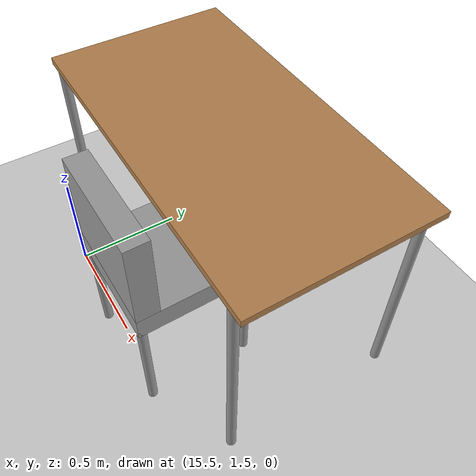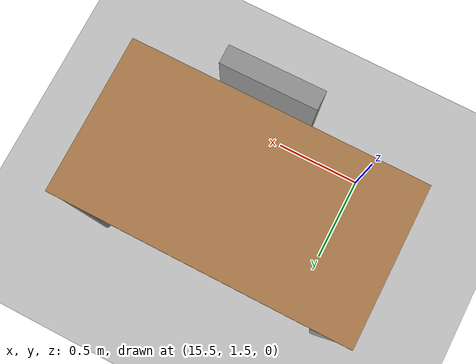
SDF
<sdf version="1.6">
 <world name="default">
  <model name="ground_plane">
   <static>1</static>
   <link name="link">
    <collision name="collision">
     <geometry><plane><normal>0 0 1</normal><size>100 100</size></plane></geometry>
     <surface>
      <contact><collide_bitmask>65535</collide_bitmask></contact>
      <friction><ode><mu>100</mu><mu2>50</mu2></ode></friction>
     </surface>
    </collision>
    <visual name="visual">
     <cast_shadows>0</cast_shadows>
     <geometry><plane><normal>0 0 1</normal><size>100 100</size></plane></geometry>
     <material>
      <script><uri>file://media/materials/scripts/gazebo.material</uri><name>Gazebo/Grey</name></script>
     </material>
    </visual>
   </link>
  </model>
  <model name="table_16">
   <static>1</static>
   <link name="link">
    <collision name="surface">
     <pose>0 0 1 0 -0 0</pose>
     <geometry><box><size>1.5 0.8 0.03</size></box></geometry>
     <surface><friction><ode><mu>0.6</mu><mu2>0.6</mu2></ode></friction></surface>
    </collision>
    <visual name="visual1">
     <pose>0 0 1 0 -0 0</pose>
     <geometry><box><size>1.5 0.8 0.03</size></box></geometry>
     <material>
      <script><uri>file://media/materials/scripts/gazebo.material</uri><name>Gazebo/Wood</name></script>
     </material>
    </visual>
    <collision name="front_left_leg">
     <pose>0.68 0.38 0.5 0 -0 0</pose>
     <geometry><cylinder><radius>0.02</radius><length>1</length></cylinder></geometry>
    </collision>
    <visual name="front_left_leg">
     <pose>0.68 0.38 0.5 0 -0 0</pose>
     <geometry><cylinder><radius>0.02</radius><length>1</length></cylinder></geometry>
     <material>
      <script><uri>file://media/materials/scripts/gazebo.material</uri><name>Gazebo/Grey</name></script>
     </material>
    </visual>
    <collision name="front_right_leg">
     <pose>0.68 -0.38 0.5 0 -0 0</pose>
     <geometry><cylinder><radius>0.02</radius><length>1</length></cylinder></geometry>
    </collision>
    <visual name="front_right_leg">
     <pose>0.68 -0.38 0.5 0 -0 0</pose>
     <geometry><cylinder><radius>0.02</radius><length>1</length></cylinder></geometry>
     <material>
      <script><uri>file://media/materials/scripts/gazebo.material</uri><name>Gazebo/Grey</name></script>
     </material>
    </visual>
    <collision name="back_right_leg">
     <pose>-0.68 -0.38 0.5 0 -0 0</pose>
     <geometry><cylinder><radius>0.02</radius><length>1</length></cylinder></geometry>
    </collision>
    <visual name="back_right_leg">
     <pose>-0.68 -0.38 0.5 0 -0 0</pose>
     <geometry><cylinder><radius>0.02</radius><length>1</length></cylinder></geometry>
     <material>
      <script><uri>file://media/materials/scripts/gazebo.material</uri><name>Gazebo/Grey</name></script>
     </material>
    </visual>
    <collision name="back_left_leg">
     <pose>-0.68 0.38 0.5 0 -0 0</pose>
     <geometry><cylinder><radius>0.02</radius><length>1</length></cylinder></geometry>
    </collision>
    <visual name="back_left_leg">
     <pose>-0.68 0.38 0.5 0 -0 0</pose>
     <geometry><cylinder><radius>0.02</radius><length>1</length></cylinder></geometry>
     <material>
      <script><uri>file://media/materials/scripts/gazebo.material</uri><name>Gazebo/Grey</name></script>
     </material>
    </visual>
   </link>
   <pose>16.0217 2.02215 0 0 -0 0</pose>
  </model>
  <model name="chair_17">
   <link name="link_0">
    <inertial>
     <mass>1</mass>
     <inertia><ixx>0.145833</ixx><ixy>0</ixy><ixz>0</ixz><iyy>0.145833</iyy><iyz>0</iyz><izz>0.125</izz></inertia>
    </inertial>
    <pose>-0.23 -0.19667 -0.280001 0 -0 0</pose>
    <visual name="visual">
     <geometry><cylinder><radius>0.02</radius><length>0.5</length></cylinder></geometry>
     <material>
      <lighting>1</lighting>
      <script><uri>file://media/materials/scripts/gazebo.material</uri><name>Gazebo/Grey</name></script>
      <shader type="vertex"><normal_map>__default__</normal_map></shader>
      <ambient>0.3 0.3 0.3 1</ambient>
      <diffuse>0.7 0.7 0.7 1</diffuse>
      <specular>0.01 0.01 0.01 1</specular>
      <emissive>0 0 0 1</emissive>
     </material>
    </visual>
    <collision name="collision">
     <geometry><cylinder><radius>0.02</radius><length>0.5</length></cylinder></geometry>
     <surface>
      <friction>
       <ode><mu>1</mu><mu2>1</mu2><fdir1>0 0 0</fdir1><slip1>0</slip1><slip2>0</slip2></ode>
       <torsional>
        <coefficient>1</coefficient>
        <patch_radius>0</patch_radius>
        <surface_radius>0</surface_radius>
        <use_patch_radius>1</use_patch_radius>
        <ode><slip>0</slip></ode>
       </torsional>
      </friction>
      <bounce><restitution_coefficient>0</restitution_coefficient><threshold>1e+06</threshold></bounce>
      <contact>
       <collide_without_contact>0</collide_without_contact>
       <collide_without_contact_bitmask>1</collide_without_contact_bitmask>
       <collide_bitmask>1</collide_bitmask>
       <ode>
        <soft_cfm>0</soft_cfm>
        <soft_erp>0.2</soft_erp>
        <kp>1e+13</kp>
        <kd>1</kd>
        <max_vel>0.01</max_vel>
        <min_depth>0</min_depth>
       </ode>
       <bullet>
        <split_impulse>1</split_impulse>
        <split_impulse_penetration_threshold>-0.01</split_impulse_penetration_threshold>
        <soft_cfm>0</soft_cfm>
        <soft_erp>0.2</soft_erp>
        <kp>1e+13</kp>
        <kd>1</kd>
       </bullet>
      </contact>
     </surface>
    </collision>
   </link>
   <link name="link_0_clone">
    <inertial>
     <mass>1</mass>
     <inertia><ixx>0.145833</ixx><ixy>0</ixy><ixz>0</ixz><iyy>0.145833</iyy><iyz>0</iyz><izz>0.125</izz></inertia>
    </inertial>
    <pose>0.23 -0.19667 -0.280001 0 -0 0</pose>
    <visual name="visual">
     <geometry><cylinder><radius>0.02</radius><length>0.5</length></cylinder></geometry>
     <material>
      <lighting>1</lighting>
      <script><uri>file://media/materials/scripts/gazebo.material</uri><name>Gazebo/Grey</name></script>
      <shader type="vertex"><normal_map>__default__</normal_map></shader>
      <ambient>0.3 0.3 0.3 1</ambient>
      <diffuse>0.7 0.7 0.7 1</diffuse>
      <specular>0.01 0.01 0.01 1</specular>
      <emissive>0 0 0 1</emissive>
     </material>
    </visual>
    <collision name="collision">
     <geometry><cylinder><radius>0.02</radius><length>0.5</length></cylinder></geometry>
     <surface>
      <friction>
       <ode><mu>1</mu><mu2>1</mu2><fdir1>0 0 0</fdir1><slip1>0</slip1><slip2>0</slip2></ode>
       <torsional>
        <coefficient>1</coefficient>
        <patch_radius>0</patch_radius>
        <surface_radius>0</surface_radius>
        <use_patch_radius>1</use_patch_radius>
        <ode><slip>0</slip></ode>
       </torsional>
      </friction>
      <bounce><restitution_coefficient>0</restitution_coefficient><threshold>1e+06</threshold></bounce>
      <contact>
       <collide_without_contact>0</collide_without_contact>
       <collide_without_contact_bitmask>1</collide_without_contact_bitmask>
       <collide_bitmask>1</collide_bitmask>
       <ode>
        <soft_cfm>0</soft_cfm>
        <soft_erp>0.2</soft_erp>
        <kp>1e+13</kp>
        <kd>1</kd>
        <max_vel>0.01</max_vel>
        <min_depth>0</min_depth>
       </ode>
       <bullet>
        <split_impulse>1</split_impulse>
        <split_impulse_penetration_threshold>-0.01</split_impulse_penetration_threshold>
        <soft_cfm>0</soft_cfm>
        <soft_erp>0.2</soft_erp>
        <kp>1e+13</kp>
        <kd>1</kd>
       </bullet>
      </contact>
     </surface>
    </collision>
   </link>
   <link name="link_0_clone_0">
    <inertial>
     <mass>1</mass>
     <inertia><ixx>0.145833</ixx><ixy>0</ixy><ixz>0</ixz><iyy>0.145833</iyy><iyz>0</iyz><izz>0.125</izz></inertia>
    </inertial>
    <pose>0.23 0.26333 -0.280001 0 -0 0</pose>
    <visual name="visual">
     <geometry><cylinder><radius>0.02</radius><length>0.5</length></cylinder></geometry>
     <material>
      <lighting>1</lighting>
      <script><uri>file://media/materials/scripts/gazebo.material</uri><name>Gazebo/Grey</name></script>
      <shader type="vertex"><normal_map>__default__</normal_map></shader>
      <ambient>0.3 0.3 0.3 1</ambient>
      <diffuse>0.7 0.7 0.7 1</diffuse>
      <specular>0.01 0.01 0.01 1</specular>
      <emissive>0 0 0 1</emissive>
     </material>
    </visual>
    <collision name="collision">
     <geometry><cylinder><radius>0.02</radius><length>0.5</length></cylinder></geometry>
     <surface>
      <friction>
       <ode><mu>1</mu><mu2>1</mu2><fdir1>0 0 0</fdir1><slip1>0</slip1><slip2>0</slip2></ode>
       <torsional>
        <coefficient>1</coefficient>
        <patch_radius>0</patch_radius>
        <surface_radius>0</surface_radius>
        <use_patch_radius>1</use_patch_radius>
        <ode><slip>0</slip></ode>
       </torsional>
      </friction>
      <bounce><restitution_coefficient>0</restitution_coefficient><threshold>1e+06</threshold></bounce>
      <contact>
       <collide_without_contact>0</collide_without_contact>
       <collide_without_contact_bitmask>1</collide_without_contact_bitmask>
       <collide_bitmask>1</collide_bitmask>
       <ode>
        <soft_cfm>0</soft_cfm>
        <soft_erp>0.2</soft_erp>
        <kp>1e+13</kp>
        <kd>1</kd>
        <max_vel>0.01</max_vel>
        <min_depth>0</min_depth>
       </ode>
       <bullet>
        <split_impulse>1</split_impulse>
        <split_impulse_penetration_threshold>-0.01</split_impulse_penetration_threshold>
        <soft_cfm>0</soft_cfm>
        <soft_erp>0.2</soft_erp>
        <kp>1e+13</kp>
        <kd>1</kd>
       </bullet>
      </contact>
     </surface>
    </collision>
   </link>
   <link name="link_0_clone_1">
    <inertial>
     <mass>1</mass>
     <inertia><ixx>0.145833</ixx><ixy>0</ixy><ixz>0</ixz><iyy>0.145833</iyy><iyz>0</iyz><izz>0.125</izz></inertia>
    </inertial>
    <pose>-0.23 0.26333 -0.280001 0 -0 0</pose>
    <visual name="visual">
     <geometry><cylinder><radius>0.02</radius><length>0.5</length></cylinder></geometry>
     <material>
      <lighting>1</lighting>
      <script><uri>file://media/materials/scripts/gazebo.material</uri><name>Gazebo/Grey</name></script>
      <shader type="vertex"><normal_map>__default__</normal_map></shader>
      <ambient>0.3 0.3 0.3 1</ambient>
      <diffuse>0.7 0.7 0.7 1</diffuse>
      <specular>0.01 0.01 0.01 1</specular>
      <emissive>0 0 0 1</emissive>
     </material>
    </visual>
    <collision name="collision">
     <geometry><cylinder><radius>0.02</radius><length>0.5</length></cylinder></geometry>
     <surface>
      <friction>
       <ode><mu>1</mu><mu2>1</mu2><fdir1>0 0 0</fdir1><slip1>0</slip1><slip2>0</slip2></ode>
       <torsional>
        <coefficient>1</coefficient>
        <patch_radius>0</patch_radius>
        <surface_radius>0</surface_radius>
        <use_patch_radius>1</use_patch_radius>
        <ode><slip>0</slip></ode>
       </torsional>
      </friction>
      <bounce><restitution_coefficient>0</restitution_coefficient><threshold>1e+06</threshold></bounce>
      <contact>
       <collide_without_contact>0</collide_without_contact>
       <collide_without_contact_bitmask>1</collide_without_contact_bitmask>
       <collide_bitmask>1</collide_bitmask>
       <ode>
        <soft_cfm>0</soft_cfm>
        <soft_erp>0.2</soft_erp>
        <kp>1e+13</kp>
        <kd>1</kd>
        <max_vel>0.01</max_vel>
        <min_depth>0</min_depth>
       </ode>
       <bullet>
        <split_impulse>1</split_impulse>
        <split_impulse_penetration_threshold>-0.01</split_impulse_penetration_threshold>
        <soft_cfm>0</soft_cfm>
        <soft_erp>0.2</soft_erp>
        <kp>1e+13</kp>
        <kd>1</kd>
       </bullet>
      </contact>
     </surface>
    </collision>
   </link>
   <link name="link_2">
    <inertial>
     <mass>1</mass>
     <inertia>
      <ixx>0.166667</ixx>
      <ixy>0</ixy>
      <ixz>0</ixz>
      <iyy>0.166667</iyy>
      <iyz>0</iyz>
      <izz>0.166667</izz>
     </inertia>
    </inertial>
    <pose>0 0.03333 0.019999 0 -0 0</pose>
    <visual name="visual">
     <geometry><box><size>0.5 0.5 0.1</size></box></geometry>
     <material>
      <lighting>1</lighting>
      <script><uri>file://media/materials/scripts/gazebo.material</uri><name>Gazebo/Grey</name></script>
      <shader type="vertex"><normal_map>__default__</normal_map></shader>
      <ambient>0.3 0.3 0.3 1</ambient>
      <diffuse>0.7 0.7 0.7 1</diffuse>
      <specular>0.01 0.01 0.01 1</specular>
      <emissive>0 0 0 1</emissive>
     </material>
    </visual>
    <collision name="collision">
     <geometry><box><size>0.5 0.5 0.1</size></box></geometry>
     <surface>
      <friction>
       <ode><mu>1</mu><mu2>1</mu2><fdir1>0 0 0</fdir1><slip1>0</slip1><slip2>0</slip2></ode>
       <torsional>
        <coefficient>1</coefficient>
        <patch_radius>0</patch_radius>
        <surface_radius>0</surface_radius>
        <use_patch_radius>1</use_patch_radius>
        <ode><slip>0</slip></ode>
       </torsional>
      </friction>
      <bounce><restitution_coefficient>0</restitution_coefficient><threshold>1e+06</threshold></bounce>
      <contact>
       <collide_without_contact>0</collide_without_contact>
       <collide_without_contact_bitmask>1</collide_without_contact_bitmask>
       <collide_bitmask>1</collide_bitmask>
       <ode>
        <soft_cfm>0</soft_cfm>
        <soft_erp>0.2</soft_erp>
        <kp>1e+13</kp>
        <kd>1</kd>
        <max_vel>0.01</max_vel>
        <min_depth>0</min_depth>
       </ode>
       <bullet>
        <split_impulse>1</split_impulse>
        <split_impulse_penetration_threshold>-0.01</split_impulse_penetration_threshold>
        <soft_cfm>0</soft_cfm>
        <soft_erp>0.2</soft_erp>
        <kp>1e+13</kp>
        <kd>1</kd>
       </bullet>
      </contact>
     </surface>
    </collision>
   </link>
   <link name="link_2_clone">
    <inertial>
     <mass>1</mass>
     <inertia>
      <ixx>0.166667</ixx>
      <ixy>0</ixy>
      <ixz>0</ixz>
      <iyy>0.166667</iyy>
      <iyz>0</iyz>
      <izz>0.166667</izz>
     </inertia>
    </inertial>
    <pose>0 -0.166646 0.220004 1.5707 -0 0</pose>
    <visual name="visual">
     <geometry><box><size>0.5 0.5 0.1</size></box></geometry>
     <material>
      <lighting>1</lighting>
      <script><uri>file://media/materials/scripts/gazebo.material</uri><name>Gazebo/Grey</name></script>
      <shader type="vertex"><normal_map>__default__</normal_map></shader>
      <ambient>0.3 0.3 0.3 1</ambient>
      <diffuse>0.7 0.7 0.7 1</diffuse>
      <specular>0.01 0.01 0.01 1</specular>
      <emissive>0 0 0 1</emissive>
     </material>
    </visual>
    <collision name="collision">
     <geometry><box><size>0.5 0.5 0.1</size></box></geometry>
     <surface>
      <friction>
       <ode><mu>1</mu><mu2>1</mu2><fdir1>0 0 0</fdir1><slip1>0</slip1><slip2>0</slip2></ode>
       <torsional>
        <coefficient>1</coefficient>
        <patch_radius>0</patch_radius>
        <surface_radius>0</surface_radius>
        <use_patch_radius>1</use_patch_radius>
        <ode><slip>0</slip></ode>
       </torsional>
      </friction>
      <bounce><restitution_coefficient>0</restitution_coefficient><threshold>1e+06</threshold></bounce>
      <contact>
       <collide_without_contact>0</collide_without_contact>
       <collide_without_contact_bitmask>1</collide_without_contact_bitmask>
       <collide_bitmask>1</collide_bitmask>
       <ode>
        <soft_cfm>0</soft_cfm>
        <soft_erp>0.2</soft_erp>
        <kp>1e+13</kp>
        <kd>1</kd>
        <max_vel>0.01</max_vel>
        <min_depth>0</min_depth>
       </ode>
       <bullet>
        <split_impulse>1</split_impulse>
        <split_impulse_penetration_threshold>-0.01</split_impulse_penetration_threshold>
        <soft_cfm>0</soft_cfm>
        <soft_erp>0.2</soft_erp>
        <kp>1e+13</kp>
        <kd>1</kd>
       </bullet>
      </contact>
     </surface>
    </collision>
   </link>
   <joint name="link_0_clone_JOINT_2" type="fixed">
    <parent>link_2</parent>
    <child>link_0_clone</child>
    <physics>
     <ode><limit><cfm>0</cfm><erp>0.2</erp></limit><suspension><cfm>0</cfm><erp>0.2</erp></suspension></ode>
    </physics>
   </joint>
   <joint name="link_2_JOINT_1" type="fixed">
    <parent>link_2</parent>
    <child>link_0</child>
    <physics>
     <ode><limit><cfm>0</cfm><erp>0.2</erp></limit><suspension><cfm>0</cfm><erp>0.2</erp></suspension></ode>
    </physics>
   </joint>
   <joint name="link_2_JOINT_3" type="fixed">
    <parent>link_2</parent>
    <child>link_0_clone_0</child>
    <physics>
     <ode><limit><cfm>0</cfm><erp>0.2</erp></limit><suspension><cfm>0</cfm><erp>0.2</erp></suspension></ode>
    </physics>
   </joint>
   <joint name="link_2_JOINT_4" type="fixed">
    <parent>link_2</parent>
    <child>link_0_clone_1</child>
    <physics>
     <ode><limit><cfm>0</cfm><erp>0.2</erp></limit><suspension><cfm>0</cfm><erp>0.2</erp></suspension></ode>
    </physics>
   </joint>
   <joint name="link_2_JOINT_5" type="fixed">
    <parent>link_2</parent>
    <child>link_2_clone</child>
    <physics>
     <ode><limit><cfm>0</cfm><erp>0.2</erp></limit><suspension><cfm>0</cfm><erp>0.2</erp></suspension></ode>
    </physics>
   </joint>
   <static>0</static>
   <pose>16.1181 1.65727 0.529993 0 -0 0.008975</pose>
  </model>
 </world>
</sdf>
